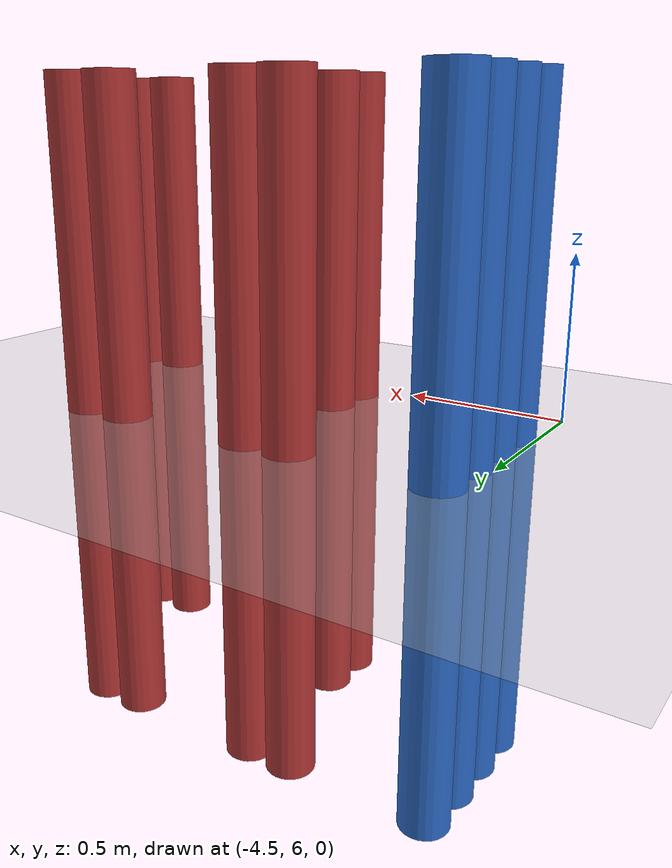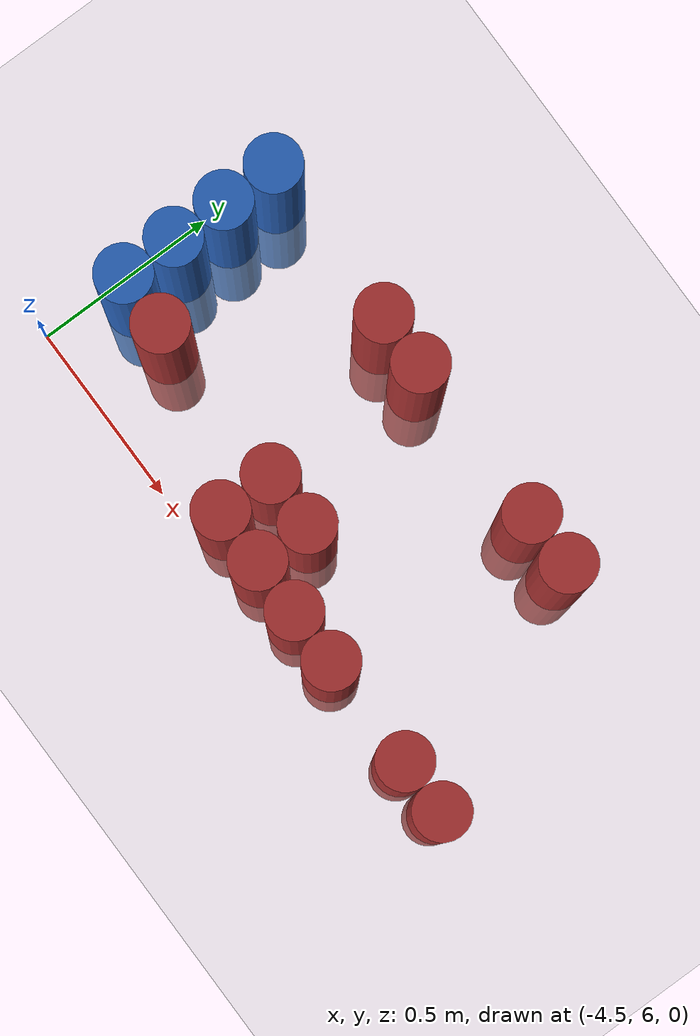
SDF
<sdf version="1.6">
 <world name="default">
  <model name="ground_plane">
   <static>1</static>
   <link name="link">
    <collision name="collision">
     <geometry><plane><normal>0 0 1</normal><size>100 100</size></plane></geometry>
     <surface><friction><ode><mu>100</mu><mu2>50</mu2></ode></friction></surface>
    </collision>
    <visual name="visual">
     <cast_shadows>0</cast_shadows>
     <geometry><plane><normal>0 0 1</normal><size>100 100</size></plane></geometry>
     <material>
      <script><uri>file://media/materials/scripts/gazebo.material</uri><name>Gazebo/Grey</name></script>
     </material>
    </visual>
   </link>
  </model>
  <model name="unit_cylinder_103">
   <static>1</static>
   <pose>-4.425000 6.225000 0.000000 0.000000 0.000000 0.000000</pose>
   <link name="link">
    <inertial>
     <mass>1</mass>
     <inertia><ixx>0.145833</ixx><ixy>0</ixy><ixz>0</ixz><iyy>0.145833</iyy><iyz>0</iyz><izz>0.125</izz></inertia>
    </inertial>
    <collision name="collision">
     <geometry><cylinder><radius>0.075000</radius><length>2</length></cylinder></geometry>
    </collision>
    <visual name="visual">
     <geometry><cylinder><radius>0.075000</radius><length>2</length></cylinder></geometry>
     <material>
      <ambient>0.152000 0.379000 0.720000 1</ambient>
      <diffuse>0.152000 0.379000 0.720000 1</diffuse>
     </material>
     <material>
      <script><name>Gazebo/Grey</name><uri>file://media/materials/scripts/gazebo.material</uri></script>
     </material>
    </visual>
   </link>
  </model>
  <model name="unit_cylinder_104">
   <static>1</static>
   <pose>-4.425000 6.375000 0.000000 0.000000 0.000000 0.000000</pose>
   <link name="link">
    <inertial>
     <mass>1</mass>
     <inertia><ixx>0.145833</ixx><ixy>0</ixy><ixz>0</ixz><iyy>0.145833</iyy><iyz>0</iyz><izz>0.125</izz></inertia>
    </inertial>
    <collision name="collision">
     <geometry><cylinder><radius>0.075000</radius><length>2</length></cylinder></geometry>
    </collision>
    <visual name="visual">
     <geometry><cylinder><radius>0.075000</radius><length>2</length></cylinder></geometry>
     <material>
      <ambient>0.152000 0.379000 0.720000 1</ambient>
      <diffuse>0.152000 0.379000 0.720000 1</diffuse>
     </material>
     <material>
      <script><name>Gazebo/Grey</name><uri>file://media/materials/scripts/gazebo.material</uri></script>
     </material>
    </visual>
   </link>
  </model>
  <model name="unit_cylinder_105">
   <static>1</static>
   <pose>-4.425000 6.525000 0.000000 0.000000 0.000000 0.000000</pose>
   <link name="link">
    <inertial>
     <mass>1</mass>
     <inertia><ixx>0.145833</ixx><ixy>0</ixy><ixz>0</ixz><iyy>0.145833</iyy><iyz>0</iyz><izz>0.125</izz></inertia>
    </inertial>
    <collision name="collision">
     <geometry><cylinder><radius>0.075000</radius><length>2</length></cylinder></geometry>
    </collision>
    <visual name="visual">
     <geometry><cylinder><radius>0.075000</radius><length>2</length></cylinder></geometry>
     <material>
      <ambient>0.152000 0.379000 0.720000 1</ambient>
      <diffuse>0.152000 0.379000 0.720000 1</diffuse>
     </material>
     <material>
      <script><name>Gazebo/Grey</name><uri>file://media/materials/scripts/gazebo.material</uri></script>
     </material>
    </visual>
   </link>
  </model>
  <model name="unit_cylinder_106">
   <static>1</static>
   <pose>-4.425000 6.675000 0.000000 0.000000 0.000000 0.000000</pose>
   <link name="link">
    <inertial>
     <mass>1</mass>
     <inertia><ixx>0.145833</ixx><ixy>0</ixy><ixz>0</ixz><iyy>0.145833</iyy><iyz>0</iyz><izz>0.125</izz></inertia>
    </inertial>
    <collision name="collision">
     <geometry><cylinder><radius>0.075000</radius><length>2</length></cylinder></geometry>
    </collision>
    <visual name="visual">
     <geometry><cylinder><radius>0.075000</radius><length>2</length></cylinder></geometry>
     <material>
      <ambient>0.152000 0.379000 0.720000 1</ambient>
      <diffuse>0.152000 0.379000 0.720000 1</diffuse>
     </material>
     <material>
      <script><name>Gazebo/Grey</name><uri>file://media/materials/scripts/gazebo.material</uri></script>
     </material>
    </visual>
   </link>
  </model>
  <model name="unit_cylinder_129">
   <static>1</static>
   <pose>-4.275000 6.225000 0.000000 0.000000 0.000000 0.000000</pose>
   <link name="link">
    <inertial>
     <mass>1</mass>
     <inertia><ixx>0.145833</ixx><ixy>0</ixy><ixz>0</ixz><iyy>0.145833</iyy><iyz>0</iyz><izz>0.125</izz></inertia>
    </inertial>
    <collision name="collision">
     <geometry><cylinder><radius>0.075000</radius><length>2</length></cylinder></geometry>
    </collision>
    <visual name="visual">
     <geometry><cylinder><radius>0.075000</radius><length>2</length></cylinder></geometry>
     <material>
      <ambient>0.648000 0.192000 0.192000 1</ambient>
      <diffuse>0.648000 0.192000 0.192000 1</diffuse>
     </material>
     <material>
      <script><name>Gazebo/Grey</name><uri>file://media/materials/scripts/gazebo.material</uri></script>
     </material>
    </visual>
   </link>
  </model>
  <model name="unit_cylinder_150">
   <static>1</static>
   <pose>-3.975000 6.675000 0.000000 0.000000 0.000000 0.000000</pose>
   <link name="link">
    <inertial>
     <mass>1</mass>
     <inertia><ixx>0.145833</ixx><ixy>0</ixy><ixz>0</ixz><iyy>0.145833</iyy><iyz>0</iyz><izz>0.125</izz></inertia>
    </inertial>
    <collision name="collision">
     <geometry><cylinder><radius>0.075000</radius><length>2</length></cylinder></geometry>
    </collision>
    <visual name="visual">
     <geometry><cylinder><radius>0.075000</radius><length>2</length></cylinder></geometry>
     <material>
      <ambient>0.648000 0.192000 0.192000 1</ambient>
      <diffuse>0.648000 0.192000 0.192000 1</diffuse>
     </material>
     <material>
      <script><name>Gazebo/Grey</name><uri>file://media/materials/scripts/gazebo.material</uri></script>
     </material>
    </visual>
   </link>
  </model>
  <model name="unit_cylinder_161">
   <static>1</static>
   <pose>-3.825000 6.075000 0.000000 0.000000 0.000000 0.000000</pose>
   <link name="link">
    <inertial>
     <mass>1</mass>
     <inertia><ixx>0.145833</ixx><ixy>0</ixy><ixz>0</ixz><iyy>0.145833</iyy><iyz>0</iyz><izz>0.125</izz></inertia>
    </inertial>
    <collision name="collision">
     <geometry><cylinder><radius>0.075000</radius><length>2</length></cylinder></geometry>
    </collision>
    <visual name="visual">
     <geometry><cylinder><radius>0.075000</radius><length>2</length></cylinder></geometry>
     <material>
      <ambient>0.648000 0.192000 0.192000 1</ambient>
      <diffuse>0.648000 0.192000 0.192000 1</diffuse>
     </material>
     <material>
      <script><name>Gazebo/Grey</name><uri>file://media/materials/scripts/gazebo.material</uri></script>
     </material>
    </visual>
   </link>
  </model>
  <model name="unit_cylinder_162">
   <static>1</static>
   <pose>-3.825000 6.225000 0.000000 0.000000 0.000000 0.000000</pose>
   <link name="link">
    <inertial>
     <mass>1</mass>
     <inertia><ixx>0.145833</ixx><ixy>0</ixy><ixz>0</ixz><iyy>0.145833</iyy><iyz>0</iyz><izz>0.125</izz></inertia>
    </inertial>
    <collision name="collision">
     <geometry><cylinder><radius>0.075000</radius><length>2</length></cylinder></geometry>
    </collision>
    <visual name="visual">
     <geometry><cylinder><radius>0.075000</radius><length>2</length></cylinder></geometry>
     <material>
      <ambient>0.648000 0.192000 0.192000 1</ambient>
      <diffuse>0.648000 0.192000 0.192000 1</diffuse>
     </material>
     <material>
      <script><name>Gazebo/Grey</name><uri>file://media/materials/scripts/gazebo.material</uri></script>
     </material>
    </visual>
   </link>
  </model>
  <model name="unit_cylinder_163">
   <static>1</static>
   <pose>-3.825000 6.675000 0.000000 0.000000 0.000000 0.000000</pose>
   <link name="link">
    <inertial>
     <mass>1</mass>
     <inertia><ixx>0.145833</ixx><ixy>0</ixy><ixz>0</ixz><iyy>0.145833</iyy><iyz>0</iyz><izz>0.125</izz></inertia>
    </inertial>
    <collision name="collision">
     <geometry><cylinder><radius>0.075000</radius><length>2</length></cylinder></geometry>
    </collision>
    <visual name="visual">
     <geometry><cylinder><radius>0.075000</radius><length>2</length></cylinder></geometry>
     <material>
      <ambient>0.648000 0.192000 0.192000 1</ambient>
      <diffuse>0.648000 0.192000 0.192000 1</diffuse>
     </material>
     <material>
      <script><name>Gazebo/Grey</name><uri>file://media/materials/scripts/gazebo.material</uri></script>
     </material>
    </visual>
   </link>
  </model>
  <model name="unit_cylinder_168">
   <static>1</static>
   <pose>-3.675000 6.075000 0.000000 0.000000 0.000000 0.000000</pose>
   <link name="link">
    <inertial>
     <mass>1</mass>
     <inertia><ixx>0.145833</ixx><ixy>0</ixy><ixz>0</ixz><iyy>0.145833</iyy><iyz>0</iyz><izz>0.125</izz></inertia>
    </inertial>
    <collision name="collision">
     <geometry><cylinder><radius>0.075000</radius><length>2</length></cylinder></geometry>
    </collision>
    <visual name="visual">
     <geometry><cylinder><radius>0.075000</radius><length>2</length></cylinder></geometry>
     <material>
      <ambient>0.648000 0.192000 0.192000 1</ambient>
      <diffuse>0.648000 0.192000 0.192000 1</diffuse>
     </material>
     <material>
      <script><name>Gazebo/Grey</name><uri>file://media/materials/scripts/gazebo.material</uri></script>
     </material>
    </visual>
   </link>
  </model>
  <model name="unit_cylinder_169">
   <static>1</static>
   <pose>-3.675000 6.225000 0.000000 0.000000 0.000000 0.000000</pose>
   <link name="link">
    <inertial>
     <mass>1</mass>
     <inertia><ixx>0.145833</ixx><ixy>0</ixy><ixz>0</ixz><iyy>0.145833</iyy><iyz>0</iyz><izz>0.125</izz></inertia>
    </inertial>
    <collision name="collision">
     <geometry><cylinder><radius>0.075000</radius><length>2</length></cylinder></geometry>
    </collision>
    <visual name="visual">
     <geometry><cylinder><radius>0.075000</radius><length>2</length></cylinder></geometry>
     <material>
      <ambient>0.648000 0.192000 0.192000 1</ambient>
      <diffuse>0.648000 0.192000 0.192000 1</diffuse>
     </material>
     <material>
      <script><name>Gazebo/Grey</name><uri>file://media/materials/scripts/gazebo.material</uri></script>
     </material>
    </visual>
   </link>
  </model>
  <model name="unit_cylinder_174">
   <static>1</static>
   <pose>-3.525000 6.075000 0.000000 0.000000 0.000000 0.000000</pose>
   <link name="link">
    <inertial>
     <mass>1</mass>
     <inertia><ixx>0.145833</ixx><ixy>0</ixy><ixz>0</ixz><iyy>0.145833</iyy><iyz>0</iyz><izz>0.125</izz></inertia>
    </inertial>
    <collision name="collision">
     <geometry><cylinder><radius>0.075000</radius><length>2</length></cylinder></geometry>
    </collision>
    <visual name="visual">
     <geometry><cylinder><radius>0.075000</radius><length>2</length></cylinder></geometry>
     <material>
      <ambient>0.648000 0.192000 0.192000 1</ambient>
      <diffuse>0.648000 0.192000 0.192000 1</diffuse>
     </material>
     <material>
      <script><name>Gazebo/Grey</name><uri>file://media/materials/scripts/gazebo.material</uri></script>
     </material>
    </visual>
   </link>
  </model>
  <model name="unit_cylinder_176">
   <static>1</static>
   <pose>-3.375000 6.075000 0.000000 0.000000 0.000000 0.000000</pose>
   <link name="link">
    <inertial>
     <mass>1</mass>
     <inertia><ixx>0.145833</ixx><ixy>0</ixy><ixz>0</ixz><iyy>0.145833</iyy><iyz>0</iyz><izz>0.125</izz></inertia>
    </inertial>
    <collision name="collision">
     <geometry><cylinder><radius>0.075000</radius><length>2</length></cylinder></geometry>
    </collision>
    <visual name="visual">
     <geometry><cylinder><radius>0.075000</radius><length>2</length></cylinder></geometry>
     <material>
      <ambient>0.648000 0.192000 0.192000 1</ambient>
      <diffuse>0.648000 0.192000 0.192000 1</diffuse>
     </material>
     <material>
      <script><name>Gazebo/Grey</name><uri>file://media/materials/scripts/gazebo.material</uri></script>
     </material>
    </visual>
   </link>
  </model>
  <model name="unit_cylinder_177">
   <static>1</static>
   <pose>-3.375000 6.675000 0.000000 0.000000 0.000000 0.000000</pose>
   <link name="link">
    <inertial>
     <mass>1</mass>
     <inertia><ixx>0.145833</ixx><ixy>0</ixy><ixz>0</ixz><iyy>0.145833</iyy><iyz>0</iyz><izz>0.125</izz></inertia>
    </inertial>
    <collision name="collision">
     <geometry><cylinder><radius>0.075000</radius><length>2</length></cylinder></geometry>
    </collision>
    <visual name="visual">
     <geometry><cylinder><radius>0.075000</radius><length>2</length></cylinder></geometry>
     <material>
      <ambient>0.648000 0.192000 0.192000 1</ambient>
      <diffuse>0.648000 0.192000 0.192000 1</diffuse>
     </material>
     <material>
      <script><name>Gazebo/Grey</name><uri>file://media/materials/scripts/gazebo.material</uri></script>
     </material>
    </visual>
   </link>
  </model>
  <model name="unit_cylinder_179">
   <static>1</static>
   <pose>-3.225000 6.675000 0.000000 0.000000 0.000000 0.000000</pose>
   <link name="link">
    <inertial>
     <mass>1</mass>
     <inertia><ixx>0.145833</ixx><ixy>0</ixy><ixz>0</ixz><iyy>0.145833</iyy><iyz>0</iyz><izz>0.125</izz></inertia>
    </inertial>
    <collision name="collision">
     <geometry><cylinder><radius>0.075000</radius><length>2</length></cylinder></geometry>
    </collision>
    <visual name="visual">
     <geometry><cylinder><radius>0.075000</radius><length>2</length></cylinder></geometry>
     <material>
      <ambient>0.648000 0.192000 0.192000 1</ambient>
      <diffuse>0.648000 0.192000 0.192000 1</diffuse>
     </material>
     <material>
      <script><name>Gazebo/Grey</name><uri>file://media/materials/scripts/gazebo.material</uri></script>
     </material>
    </visual>
   </link>
  </model>
  <model name="unit_cylinder_182">
   <static>1</static>
   <pose>-3.075000 6.075000 0.000000 0.000000 0.000000 0.000000</pose>
   <link name="link">
    <inertial>
     <mass>1</mass>
     <inertia><ixx>0.145833</ixx><ixy>0</ixy><ixz>0</ixz><iyy>0.145833</iyy><iyz>0</iyz><izz>0.125</izz></inertia>
    </inertial>
    <collision name="collision">
     <geometry><cylinder><radius>0.075000</radius><length>2</length></cylinder></geometry>
    </collision>
    <visual name="visual">
     <geometry><cylinder><radius>0.075000</radius><length>2</length></cylinder></geometry>
     <material>
      <ambient>0.648000 0.192000 0.192000 1</ambient>
      <diffuse>0.648000 0.192000 0.192000 1</diffuse>
     </material>
     <material>
      <script><name>Gazebo/Grey</name><uri>file://media/materials/scripts/gazebo.material</uri></script>
     </material>
    </visual>
   </link>
  </model>
  <model name="unit_cylinder_186">
   <static>1</static>
   <pose>-2.925000 6.075000 0.000000 0.000000 0.000000 0.000000</pose>
   <link name="link">
    <inertial>
     <mass>1</mass>
     <inertia><ixx>0.145833</ixx><ixy>0</ixy><ixz>0</ixz><iyy>0.145833</iyy><iyz>0</iyz><izz>0.125</izz></inertia>
    </inertial>
    <collision name="collision">
     <geometry><cylinder><radius>0.075000</radius><length>2</length></cylinder></geometry>
    </collision>
    <visual name="visual">
     <geometry><cylinder><radius>0.075000</radius><length>2</length></cylinder></geometry>
     <material>
      <ambient>0.648000 0.192000 0.192000 1</ambient>
      <diffuse>0.648000 0.192000 0.192000 1</diffuse>
     </material>
     <material>
      <script><name>Gazebo/Grey</name><uri>file://media/materials/scripts/gazebo.material</uri></script>
     </material>
    </visual>
   </link>
  </model>
 </world>
</sdf>
